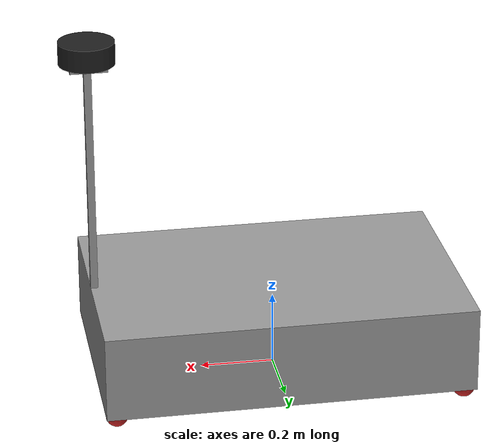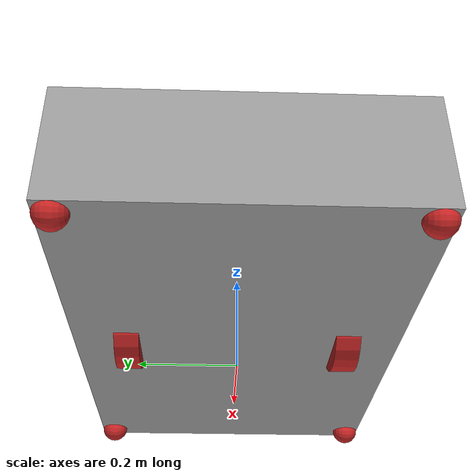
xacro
<?xml version="1.0"?>
<robot xmlns:xacro="http://www.ros.org/wiki/xacro" name="diff_bot">

    <!--................................ XACRO CONSTANTS .............................. -->

    <!-- MEASUREMENTS (METRIC UNITS)-->

    <xacro:property name="base_link_mass" value="20"/>
    <xacro:property name="base_link_length" value="1.0006"/>
    <xacro:property name="base_link_width" value="0.660"/>
    <xacro:property name="base_link_height" value="0.235"/>

    <xacro:property name="ground_clearance" value="0.0335"/>
    <xacro:property name="wheel_separation" value="0.4445"/>

    <xacro:property name="lidar_height" value="0.6731"/>
    <xacro:property name="aluminium_extrusion_width" value="0.02"/>

    <xacro:property name="main_wheel_mass" value="1"/>
    <xacro:property name="main_wheel_max_torque" value="20000"/>
    <xacro:property name="main_wheel_wheel_friction" value="5.0"/>
    <xacro:property name="main_wheel_radius" value="0.1015"/>
    <xacro:property name="main_wheel_width" value="0.05"/>

    <xacro:property name="castor_wheel_mass" value="0.1"/>
    <xacro:property name="castor_wheel_friction" value="0.0"/>
    <xacro:property name="castor_wheel_radius" value="0.03"/>
    <!-- Castor wheel gap is the gap it has from the edges of the main body box -->
    <xacro:property name="castor_wheel_gap" value="0.03"/>
    <!-- a small constant -->
    <xacro:property name="eps" value="0.003"/>

    <xacro:property name="two_d_lidar_update_rate" value="30"/>
    <xacro:property name="two_d_lidar_sample_size" value="361"/>
    <xacro:property name="two_d_lidar_min_angle" value="0"/>
    <xacro:property name="two_d_lidar_max_angle" value="360"/>
    <xacro:property name="two_d_lidar_min_range" value="0.55"/>
    <xacro:property name="two_d_lidar_max_range" value="16"/>

    <xacro:arg name="use_ros2_control" default="false" />

    <xacro:arg name="robot_namespace" default=""/>
    <xacro:arg name="wheel_odom_topic" default="odom" />
    <xacro:arg name="two_d_lidar_enabled" default="true" />
    <xacro:arg name="publish_wheel_odom_tf" default="true" />
    <xacro:arg name="ground_truth_frame" default="map"/>
    <xacro:arg name="odometry_source" default="world" />

    <xacro:property name="odometry_source" value="$(arg odometry_source)"/>

    <!-- ............................... LOAD MACROS ................................. -->

    <xacro:include filename="$(find diff_bot)/urdf/macros.urdf.xacro"/>
    <xacro:include filename="$(find diff_bot)/urdf/gazebo_plugins.urdf.xacro"/>

    <xacro:if value="$(arg use_ros2_control)">
        <xacro:include filename="$(find diff_bot)/urdf/ros2_control.xacro"/>
    </xacro:if>

    <!-- ................................ BASE LINK .................................. -->
    <link name="base_footprint"/>

    <link name="base_link">

    	<inertial>
            <mass value="${base_link_mass}" />
            <xacro:box_inertia m="${base_link_mass}" x="${base_link_length}" y="${base_link_width}" z = "${base_link_height}"/>
        </inertial>

        <collision>
            <origin xyz="0 0 ${base_link_height/2}" rpy="0 0 0" />
            <geometry>
                <box size="${base_link_length} ${base_link_width} ${base_link_height}"/>
            </geometry>
        </collision>

        <!-- Main chassis box visual -->
        <visual>
            <origin xyz="0 0 ${base_link_height/2}" rpy="0 0 0" />
            <geometry>
                <box size="${base_link_length} ${base_link_width} ${base_link_height}"/>
            </geometry>
        </visual>

        <!-- Lidar extrusion rod visual -->
        <visual>
            <origin xyz="${base_link_length/2 - aluminium_extrusion_width/2} 0 ${lidar_height/2 + base_link_height}" rpy="0 0 0" />
            <geometry>
                <box size="${aluminium_extrusion_width} ${aluminium_extrusion_width} ${lidar_height}"/>
            </geometry>
        </visual>

        <!-- Lidar base visual -->
        <visual>
            <origin xyz="${base_link_length/2 - aluminium_extrusion_width/2} 0 ${lidar_height + base_link_height - 0.035}" rpy="0 0 0" />
            <geometry>
                <box size="0.1 0.1 0.01"/>
            </geometry>
        </visual>

    </link>

    <joint name="base_joint" type="fixed">
        <parent link="base_footprint"/>
        <child link="base_link"/>
        <origin xyz="0.0 0 ${ground_clearance}" rpy="0 0 0.0" />
    </joint>

    <gazebo reference="base_link">
        <material>Gazebo/Grey</material>
    </gazebo>

    <!-- ................................ MAIN WHEELS ..................................... -->

    <xacro:main_wheel dexterity="left" origin_x="0" origin_y="${wheel_separation/2}" origin_z="${main_wheel_radius-ground_clearance}"/>
    <xacro:main_wheel dexterity="right" origin_x="0" origin_y="-${wheel_separation/2}" origin_z="${main_wheel_radius-ground_clearance}"/>

    <!-- ................................ CASTOR WHEELS ..................................... -->

    <xacro:castor_wheel cardinality="front" dexterity="left" origin_x="${base_link_length/2 - castor_wheel_gap}" origin_y="${base_link_width/2 - castor_wheel_gap}" origin_z="${castor_wheel_radius-ground_clearance+eps}"/>
    <xacro:castor_wheel cardinality="front" dexterity="right" origin_x="${base_link_length/2 - castor_wheel_gap}" origin_y="-${base_link_width/2 - castor_wheel_gap}" origin_z="${castor_wheel_radius-ground_clearance+eps}"/>

    <xacro:castor_wheel cardinality="back" dexterity="left" origin_x="-${base_link_length/2 - castor_wheel_gap}" origin_y="${base_link_width/2 - castor_wheel_gap}" origin_z="${castor_wheel_radius-ground_clearance+eps}"/>
    <xacro:castor_wheel cardinality="back" dexterity="right" origin_x="-${base_link_length/2 - castor_wheel_gap}" origin_y="-${base_link_width/2 - castor_wheel_gap}" origin_z="${castor_wheel_radius-ground_clearance+eps}"/>

    <!-- ............................. 2D LIDAR ........................................ -->

    <link name="two_d_lidar">
        <collision>
            <origin xyz="0 0 0" rpy="0 0 0" />
            <geometry>
                <cylinder length="0.06" radius="0.075"/>
            </geometry>
        </collision>

        <visual>
            <origin xyz="0 0 0" rpy="0 0 0" />
            <geometry>
                <cylinder length="0.06" radius="0.075"/>
            </geometry>
        </visual>

        <inertial>
            <origin xyz="0 0 0" rpy="0 0 0" />
            <mass value="0.1"/>
            <xacro:cylinder_inertia m="0.1" r="0.075" h="0.06"/>
        </inertial>
    </link>

    <joint name="two_d_lidar_joint" type="fixed">
        <parent link="base_link"/>
        <child link="two_d_lidar"/>
        <origin xyz="${base_link_length/2 - aluminium_extrusion_width/2} 0 ${lidar_height + base_link_height}" rpy="0 0 0" />
    </joint>

    <gazebo reference="two_d_lidar">
        <material>Gazebo/Black</material>
    </gazebo>

    <!-- ............................. IMU ........................................ -->

    <link name="imu_frame"/>

    <joint name="imu_joint" type="fixed">
        <parent link="base_link"/>
        <child link="imu_frame"/>
        <origin xyz="0.0 0.0 0.08" rpy="0.0 0.0 0.0"/>
    </joint>

</robot>

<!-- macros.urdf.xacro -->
<robot xmlns:xacro="http://www.ros.org/wiki/xacro" name="diff_bot">

    <!--................................ INERTIA MATRICES .............................. -->

    <xacro:macro name="cylinder_inertia" params="m r h">
        <inertia ixx="${m * (3 * r * r + h * h) / 12}" ixy="0" ixz="0" iyy="${m * (3 * r * r + h * h) / 12}" iyz="0" izz="${m * r * r / 2}" />
    </xacro:macro>

    <xacro:macro name="box_inertia" params="m x y z">
        <inertia ixx="${m * (y * y + z * z) / 12}" ixy="0" ixz="0" iyy="${m * (x * x + z * z) / 12}" iyz="0" izz="${m * (y * y + x * x) / 12}" />
    </xacro:macro>

    <xacro:macro name="sphere_inertia" params="m r">
        <inertia ixx="${2 * m * r * r / 5}" ixy="0" ixz="0" iyy="${2 * m * r * r / 5}" iyz="0" izz="${2 * m * r * r / 5}" />
    </xacro:macro>

    <!-- ............................... MAIN WHEEL DEFINITION .............................. -->

    <xacro:macro name="main_wheel" params="dexterity origin_x origin_y origin_z">
        <link name="${dexterity}_wheel">
            <collision>
                <origin xyz="0 0 0" rpy="0 ${pi/2} ${pi/2}" />
                <geometry>
                    <cylinder length="${main_wheel_width}" radius="${main_wheel_radius}"/>
                </geometry>
                <self_collide>false</self_collide>
            </collision>

            <inertial>
                <origin xyz="0 0 0" rpy="0 ${pi/2} ${pi/2}" />
                <mass value="${main_wheel_mass}"/>
                <xacro:cylinder_inertia m="${main_wheel_mass}" r="${main_wheel_radius}" h="${main_wheel_width}"/>
            </inertial>

            <visual>
                <origin xyz="0 0 0" rpy="0 ${pi/2} ${pi/2}" />
                <geometry>
                    <cylinder length="${main_wheel_width}" radius="${main_wheel_radius}"/>
                </geometry>
            </visual>

            <mu>5.0</mu>
        </link>

        <joint name="${dexterity}_wheel_joint" type="continuous">
            <parent link="base_link"/>
            <child link="${dexterity}_wheel"/>
            <origin xyz="${origin_x} ${origin_y} ${origin_z}" rpy="0 0 0" />
            <axis xyz="0 1 0" rpy="0 0 0" />
        </joint>

        <gazebo reference="${dexterity}_wheel">
            <material>Gazebo/Red</material>
        </gazebo>
    </xacro:macro>

    <!-- ............................... CASTOR WHEEL DEFINITION .............................. -->

    <xacro:macro name="castor_wheel" params="cardinality dexterity origin_x origin_y origin_z">
        <link name="${cardinality}_${dexterity}_castor_wheel">
            <collision>
                <origin xyz="0 0 0" rpy="0 ${pi/2} ${pi/2}" />
                <geometry>
                    <sphere radius="${castor_wheel_radius}"/>
                </geometry>
            </collision>

            <inertial>
                <origin xyz="0 0 0" rpy="0 0 0" />
                <mass value="${castor_wheel_mass}"/>
                <xacro:sphere_inertia m="${castor_wheel_mass}" r="${castor_wheel_radius}"/>
            </inertial>

            <visual>
                <origin xyz="0 0 0" rpy="0 ${pi/2} ${pi/2}" />
                <geometry>
                    <sphere radius="${castor_wheel_radius}"/>
                </geometry>
            </visual>

            <mu>0.0</mu>
        </link>

        <joint name="${cardinality}_${dexterity}_castor_wheel_joint" type="fixed">
            <parent link="base_link"/>
            <child link="${cardinality}_${dexterity}_castor_wheel"/>
            <origin xyz="${origin_x} ${origin_y} ${origin_z}" rpy="0 0 0" />
            <axis xyz="0 1 0" rpy="0 0 0" />
        </joint>

        <gazebo reference="${cardinality}_${dexterity}_castor_wheel">
            <material>Gazebo/Red</material>
        </gazebo>
    </xacro:macro>

</robot>
